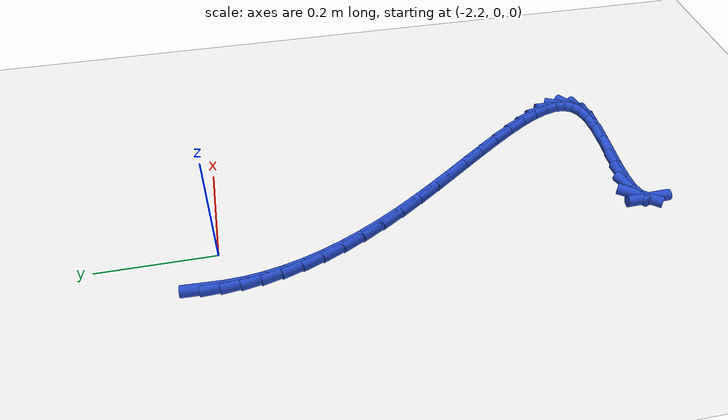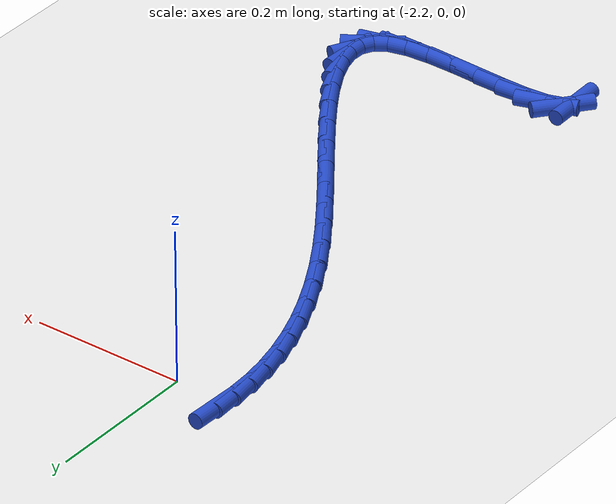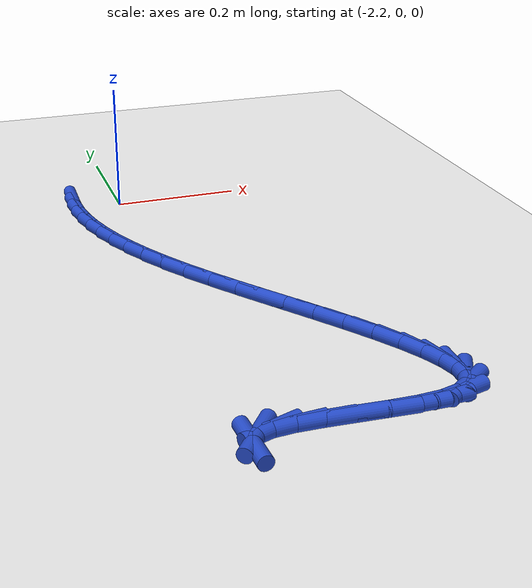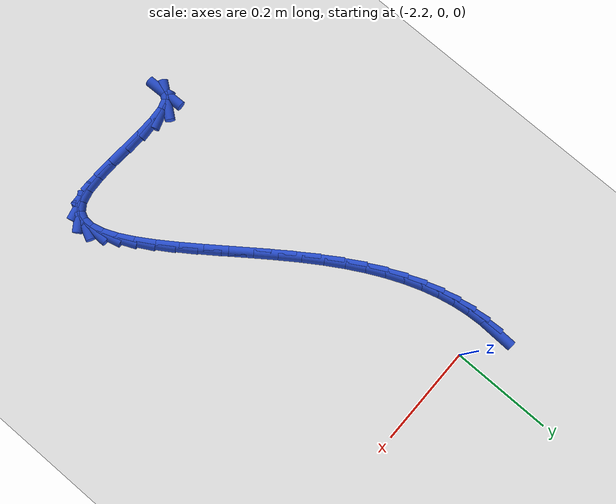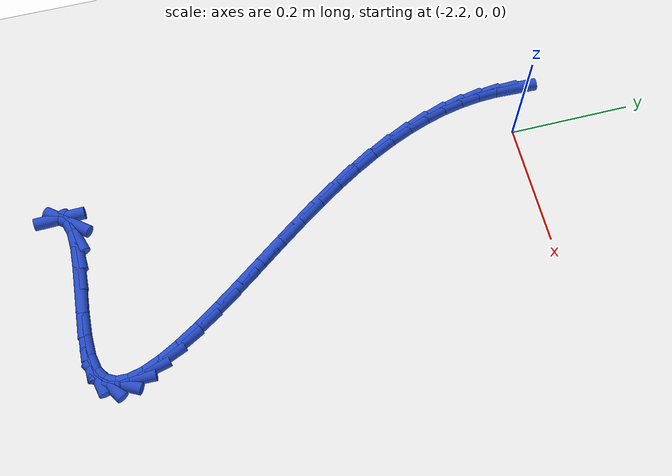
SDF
<sdf version="1.6">
 <world name="default">
  <model name="ground_plane">
   <static>1</static>
   <link name="link">
    <collision name="collision">
     <geometry><plane><normal>0 0 1</normal><size>100 100</size></plane></geometry>
     <surface><friction><ode><mu>100</mu><mu2>50</mu2></ode></friction></surface>
    </collision>
    <visual name="visual">
     <cast_shadows>0</cast_shadows>
     <geometry><plane><normal>0 0 1</normal><size>100 100</size></plane></geometry>
     <material>
      <script><uri>file://media/materials/scripts/gazebo.material</uri><name>Gazebo/WhiteGlow</name></script>
     </material>
    </visual>
   </link>
  </model>
  <model name="line">
   <link name="link_138">
    <pose>-2.275135815111439 0.02231151013541785 0.01 0 1.57 1.5402015009987633</pose>
    <collision name="collision">
     <geometry><cylinder><radius>0.01</radius><length>0.08</length></cylinder></geometry>
    </collision>
    <visual name="visual">
     <material>
      <script><name>Gazebo/Blue</name><uri>file://media/materials/scripts/gazebo.material</uri></script>
     </material>
     <geometry><cylinder><radius>0.01</radius><length>0.08</length></cylinder></geometry>
    </visual>
   </link>
   <link name="link_139">
    <pose>-2.276066311476734 -0.008092520436873741 0.01 0 1.57 -1.518140581456615</pose>
    <collision name="collision">
     <geometry><cylinder><radius>0.01</radius><length>0.08</length></cylinder></geometry>
    </collision>
    <visual name="visual">
     <material>
      <script><name>Gazebo/Blue</name><uri>file://media/materials/scripts/gazebo.material</uri></script>
     </material>
     <geometry><cylinder><radius>0.01</radius><length>0.08</length></cylinder></geometry>
    </visual>
   </link>
   <link name="link_140">
    <pose>-2.2744418058381375 -0.03891544332147269 0.01 0 1.57 -1.4380848000879933</pose>
    <collision name="collision">
     <geometry><cylinder><radius>0.01</radius><length>0.08</length></cylinder></geometry>
    </collision>
    <visual name="visual">
     <material>
      <script><name>Gazebo/Blue</name><uri>file://media/materials/scripts/gazebo.material</uri></script>
     </material>
     <geometry><cylinder><radius>0.01</radius><length>0.08</length></cylinder></geometry>
    </visual>
   </link>
   <link name="link_141">
    <pose>-2.2702632306824055 -0.07021652845055772 0.01 0 1.57 -1.3624320863640065</pose>
    <collision name="collision">
     <geometry><cylinder><radius>0.01</radius><length>0.08</length></cylinder></geometry>
    </collision>
    <visual name="visual">
     <material>
      <script><name>Gazebo/Blue</name><uri>file://media/materials/scripts/gazebo.material</uri></script>
     </material>
     <geometry><cylinder><radius>0.01</radius><length>0.08</length></cylinder></geometry>
    </visual>
   </link>
   <link name="link_142">
    <pose>-2.2635315184962925 -0.10205504575630475 0.01 0 1.57 -1.292020399766577</pose>
    <collision name="collision">
     <geometry><cylinder><radius>0.01</radius><length>0.08</length></cylinder></geometry>
    </collision>
    <visual name="visual">
     <material>
      <script><name>Gazebo/Blue</name><uri>file://media/materials/scripts/gazebo.material</uri></script>
     </material>
     <geometry><cylinder><radius>0.01</radius><length>0.08</length></cylinder></geometry>
    </visual>
   </link>
   <link name="link_143">
    <pose>-2.254247601766551 -0.1344902651708935 0.01 0 1.57 -1.2273193582768211</pose>
    <collision name="collision">
     <geometry><cylinder><radius>0.01</radius><length>0.08</length></cylinder></geometry>
    </collision>
    <visual name="visual">
     <material>
      <script><name>Gazebo/Blue</name><uri>file://media/materials/scripts/gazebo.material</uri></script>
     </material>
     <geometry><cylinder><radius>0.01</radius><length>0.08</length></cylinder></geometry>
    </visual>
   </link>
   <link name="link_144">
    <pose>-2.242412412979938 -0.16758145662649984 0.01 0 1.57 -1.1684799373159598</pose>
    <collision name="collision">
     <geometry><cylinder><radius>0.01</radius><length>0.08</length></cylinder></geometry>
    </collision>
    <visual name="visual">
     <material>
      <script><name>Gazebo/Blue</name><uri>file://media/materials/scripts/gazebo.material</uri></script>
     </material>
     <geometry><cylinder><radius>0.01</radius><length>0.08</length></cylinder></geometry>
    </visual>
   </link>
   <link name="link_145">
    <pose>-2.2280268846232056 -0.20138789005530355 0.01 0 1.57 -1.1154075389264053</pose>
    <collision name="collision">
     <geometry><cylinder><radius>0.01</radius><length>0.08</length></cylinder></geometry>
    </collision>
    <visual name="visual">
     <material>
      <script><name>Gazebo/Blue</name><uri>file://media/materials/scripts/gazebo.material</uri></script>
     </material>
     <geometry><cylinder><radius>0.01</radius><length>0.08</length></cylinder></geometry>
    </visual>
   </link>
   <link name="link_146">
    <pose>-2.2110919491831083 -0.23596883538948032 0.01 0 1.57 -1.0678380058983348</pose>
    <collision name="collision">
     <geometry><cylinder><radius>0.01</radius><length>0.08</length></cylinder></geometry>
    </collision>
    <visual name="visual">
     <material>
      <script><name>Gazebo/Blue</name><uri>file://media/materials/scripts/gazebo.material</uri></script>
     </material>
     <geometry><cylinder><radius>0.01</radius><length>0.08</length></cylinder></geometry>
    </visual>
   </link>
   <link name="link_147">
    <pose>-2.1916085391464013 -0.27138356256121027 0.01 0 1.57 -1.0254040645406362</pose>
    <collision name="collision">
     <geometry><cylinder><radius>0.01</radius><length>0.08</length></cylinder></geometry>
    </collision>
    <visual name="visual">
     <material>
      <script><name>Gazebo/Blue</name><uri>file://media/materials/scripts/gazebo.material</uri></script>
     </material>
     <geometry><cylinder><radius>0.01</radius><length>0.08</length></cylinder></geometry>
    </visual>
   </link>
   <link name="link_148">
    <pose>-2.169577586999839 -0.30769134150266875 0.01 0 1.57 -0.9882271603055426</pose>
    <collision name="collision">
     <geometry><cylinder><radius>0.01</radius><length>0.08</length></cylinder></geometry>
    </collision>
    <visual name="visual">
     <material>
      <script><name>Gazebo/Blue</name><uri>file://media/materials/scripts/gazebo.material</uri></script>
     </material>
     <geometry><cylinder><radius>0.01</radius><length>0.08</length></cylinder></geometry>
    </visual>
   </link>
   <link name="link_149">
    <pose>-2.14504758272592 -0.3449230788981337 0.01 0 1.57 -0.960783940904788</pose>
    <collision name="collision">
     <geometry><cylinder><radius>0.01</radius><length>0.08</length></cylinder></geometry>
    </collision>
    <visual name="visual">
     <material>
      <script><name>Gazebo/Blue</name><uri>file://media/materials/scripts/gazebo.material</uri></script>
     </material>
     <geometry><cylinder><radius>0.01</radius><length>0.08</length></cylinder></geometry>
    </visual>
   </link>
   <link name="link_150">
    <pose>-2.11856521299023 -0.3828125573759364 0.01 0 1.57 -0.9440799862241203</pose>
    <collision name="collision">
     <geometry><cylinder><radius>0.01</radius><length>0.08</length></cylinder></geometry>
    </collision>
    <visual name="visual">
     <material>
      <script><name>Gazebo/Blue</name><uri>file://media/materials/scripts/gazebo.material</uri></script>
     </material>
     <geometry><cylinder><radius>0.01</radius><length>0.08</length></cylinder></geometry>
    </visual>
   </link>
   <link name="link_151">
    <pose>-2.090974397641428 -0.42091628996002745 0.01 0 1.57 -0.9367013923187428</pose>
    <collision name="collision">
     <geometry><cylinder><radius>0.01</radius><length>0.08</length></cylinder></geometry>
    </collision>
    <visual name="visual">
     <material>
      <script><name>Gazebo/Blue</name><uri>file://media/materials/scripts/gazebo.material</uri></script>
     </material>
     <geometry><cylinder><radius>0.01</radius><length>0.08</length></cylinder></geometry>
    </visual>
   </link>
   <link name="link_152">
    <pose>-2.0631230290420284 -0.458788420470648 0.01 0 1.57 -0.9382584353315794</pose>
    <collision name="collision">
     <geometry><cylinder><radius>0.01</radius><length>0.08</length></cylinder></geometry>
    </collision>
    <visual name="visual">
     <material>
      <script><name>Gazebo/Blue</name><uri>file://media/materials/scripts/gazebo.material</uri></script>
     </material>
     <geometry><cylinder><radius>0.01</radius><length>0.08</length></cylinder></geometry>
    </visual>
   </link>
   <link name="link_153">
    <pose>-2.0358589995545495 -0.49598309272803554 0.01 0 1.57 -0.9493813636745205</pose>
    <collision name="collision">
     <geometry><cylinder><radius>0.01</radius><length>0.08</length></cylinder></geometry>
    </collision>
    <visual name="visual">
     <material>
      <script><name>Gazebo/Blue</name><uri>file://media/materials/scripts/gazebo.material</uri></script>
     </material>
     <geometry><cylinder><radius>0.01</radius><length>0.08</length></cylinder></geometry>
    </visual>
   </link>
   <link name="link_154">
    <pose>-2.0100302015415057 -0.5320544505524324 0.01 0 1.57 -0.9719530406101367</pose>
    <collision name="collision">
     <geometry><cylinder><radius>0.01</radius><length>0.08</length></cylinder></geometry>
    </collision>
    <visual name="visual">
     <material>
      <script><name>Gazebo/Blue</name><uri>file://media/materials/scripts/gazebo.material</uri></script>
     </material>
     <geometry><cylinder><radius>0.01</radius><length>0.08</length></cylinder></geometry>
    </visual>
   </link>
   <link name="link_155">
    <pose>-1.9864845273654157 -0.5665566377640764 0.01 0 1.57 -1.0097618411913514</pose>
    <collision name="collision">
     <geometry><cylinder><radius>0.01</radius><length>0.08</length></cylinder></geometry>
    </collision>
    <visual name="visual">
     <material>
      <script><name>Gazebo/Blue</name><uri>file://media/materials/scripts/gazebo.material</uri></script>
     </material>
     <geometry><cylinder><radius>0.01</radius><length>0.08</length></cylinder></geometry>
    </visual>
   </link>
   <link name="link_156">
    <pose>-1.9660698693887941 -0.5990437981832096 0.01 0 1.57 -1.0699677371820615</pose>
    <collision name="collision">
     <geometry><cylinder><radius>0.01</radius><length>0.08</length></cylinder></geometry>
    </collision>
    <visual name="visual">
     <material>
      <script><name>Gazebo/Blue</name><uri>file://media/materials/scripts/gazebo.material</uri></script>
     </material>
     <geometry><cylinder><radius>0.01</radius><length>0.08</length></cylinder></geometry>
    </visual>
   </link>
   <link name="link_157">
    <pose>-1.9496341199741583 -0.6290700756300701 0.01 0 1.57 -1.166331736735303</pose>
    <collision name="collision">
     <geometry><cylinder><radius>0.01</radius><length>0.08</length></cylinder></geometry>
    </collision>
    <visual name="visual">
     <material>
      <script><name>Gazebo/Blue</name><uri>file://media/materials/scripts/gazebo.material</uri></script>
     </material>
     <geometry><cylinder><radius>0.01</radius><length>0.08</length></cylinder></geometry>
    </visual>
   </link>
   <link name="link_158">
    <pose>-1.9380251714840235 -0.6561896139248995 0.01 0 1.57 -1.3261139166301987</pose>
    <collision name="collision">
     <geometry><cylinder><radius>0.01</radius><length>0.08</length></cylinder></geometry>
    </collision>
    <visual name="visual">
     <material>
      <script><name>Gazebo/Blue</name><uri>file://media/materials/scripts/gazebo.material</uri></script>
     </material>
     <geometry><cylinder><radius>0.01</radius><length>0.08</length></cylinder></geometry>
    </visual>
   </link>
   <link name="link_159">
    <pose>-1.9320909162809081 -0.6799565568879364 0.01 0 1.57 1.541341908560781</pose>
    <collision name="collision">
     <geometry><cylinder><radius>0.01</radius><length>0.08</length></cylinder></geometry>
    </collision>
    <visual name="visual">
     <material>
      <script><name>Gazebo/Blue</name><uri>file://media/materials/scripts/gazebo.material</uri></script>
     </material>
     <geometry><cylinder><radius>0.01</radius><length>0.08</length></cylinder></geometry>
    </visual>
   </link>
   <link name="link_160">
    <pose>-1.9326792467273264 -0.6999250483394216 0.01 0 1.57 1.1022401802384845</pose>
    <collision name="collision">
     <geometry><cylinder><radius>0.01</radius><length>0.08</length></cylinder></geometry>
    </collision>
    <visual name="visual">
     <material>
      <script><name>Gazebo/Blue</name><uri>file://media/materials/scripts/gazebo.material</uri></script>
     </material>
     <geometry><cylinder><radius>0.01</radius><length>0.08</length></cylinder></geometry>
    </visual>
   </link>
   <link name="link_161">
    <pose>-1.9406380551857954 -0.7156492320995952 0.01 0 1.57 0.5985929510750342</pose>
    <collision name="collision">
     <geometry><cylinder><radius>0.01</radius><length>0.08</length></cylinder></geometry>
    </collision>
    <visual name="visual">
     <material>
      <script><name>Gazebo/Blue</name><uri>file://media/materials/scripts/gazebo.material</uri></script>
     </material>
     <geometry><cylinder><radius>0.01</radius><length>0.08</length></cylinder></geometry>
    </visual>
   </link>
   <link name="link_162">
    <pose>-1.9568152340188312 -0.7266832519886963 0.01 0 1.57 0.23614986247589081</pose>
    <collision name="collision">
     <geometry><cylinder><radius>0.01</radius><length>0.08</length></cylinder></geometry>
    </collision>
    <visual name="visual">
     <material>
      <script><name>Gazebo/Blue</name><uri>file://media/materials/scripts/gazebo.material</uri></script>
     </material>
     <geometry><cylinder><radius>0.01</radius><length>0.08</length></cylinder></geometry>
    </visual>
   </link>
   <link name="link_163">
    <pose>-1.9818273133589965 -0.7327021541565215 0.01 0 1.57 0.055792074686062065</pose>
    <collision name="collision">
     <geometry><cylinder><radius>0.01</radius><length>0.08</length></cylinder></geometry>
    </collision>
    <visual name="visual">
     <material>
      <script><name>Gazebo/Blue</name><uri>file://media/materials/scripts/gazebo.material</uri></script>
     </material>
     <geometry><cylinder><radius>0.01</radius><length>0.08</length></cylinder></geometry>
    </visual>
   </link>
   <link name="link_164">
    <pose>-2.0141367424462193 -0.7345066369304888 0.01 0 1.57 -0.027014415904022565</pose>
    <collision name="collision">
     <geometry><cylinder><radius>0.01</radius><length>0.08</length></cylinder></geometry>
    </collision>
    <visual name="visual">
     <material>
      <script><name>Gazebo/Blue</name><uri>file://media/materials/scripts/gazebo.material</uri></script>
     </material>
     <geometry><cylinder><radius>0.01</radius><length>0.08</length></cylinder></geometry>
    </visual>
   </link>
   <link name="link_165">
    <pose>-2.0510343946134744 -0.7335096258646914 0.01 0 1.57 -0.061304684335252255</pose>
    <collision name="collision">
     <geometry><cylinder><radius>0.01</radius><length>0.08</length></cylinder></geometry>
    </collision>
    <visual name="visual">
     <material>
      <script><name>Gazebo/Blue</name><uri>file://media/materials/scripts/gazebo.material</uri></script>
     </material>
     <geometry><cylinder><radius>0.01</radius><length>0.08</length></cylinder></geometry>
    </visual>
   </link>
   <link name="link_166">
    <pose>-2.089799433175963 -0.7311301657852708 0.01 0 1.57 -0.061719614459383</pose>
    <collision name="collision">
     <geometry><cylinder><radius>0.01</radius><length>0.08</length></cylinder></geometry>
    </collision>
    <visual name="visual">
     <material>
      <script><name>Gazebo/Blue</name><uri>file://media/materials/scripts/gazebo.material</uri></script>
     </material>
     <geometry><cylinder><radius>0.01</radius><length>0.08</length></cylinder></geometry>
    </visual>
   </link>
   <link name="link_167">
    <pose>-2.1277110214488903 -0.7287873015183689 0.01 0 1.57 -0.02583273084775369</pose>
    <collision name="collision">
     <geometry><cylinder><radius>0.01</radius><length>0.08</length></cylinder></geometry>
    </collision>
    <visual name="visual">
     <material>
      <script><name>Gazebo/Blue</name><uri>file://media/materials/scripts/gazebo.material</uri></script>
     </material>
     <geometry><cylinder><radius>0.01</radius><length>0.08</length></cylinder></geometry>
    </visual>
   </link>
   <link name="link_168">
    <pose>-2.162048322747459 -0.7279000778901278 0.01 0 1.57 0.07075570585873298</pose>
    <collision name="collision">
     <geometry><cylinder><radius>0.01</radius><length>0.08</length></cylinder></geometry>
    </collision>
    <visual name="visual">
     <material>
      <script><name>Gazebo/Blue</name><uri>file://media/materials/scripts/gazebo.material</uri></script>
     </material>
     <geometry><cylinder><radius>0.01</radius><length>0.08</length></cylinder></geometry>
    </visual>
   </link>
   <link name="link_169">
    <pose>-2.190090500386874 -0.7298875397266888 0.01 0 1.57 0.3178142951443558</pose>
    <collision name="collision">
     <geometry><cylinder><radius>0.01</radius><length>0.08</length></cylinder></geometry>
    </collision>
    <visual name="visual">
     <material>
      <script><name>Gazebo/Blue</name><uri>file://media/materials/scripts/gazebo.material</uri></script>
     </material>
     <geometry><cylinder><radius>0.01</radius><length>0.08</length></cylinder></geometry>
    </visual>
   </link>
   <link name="link_170">
    <pose>-2.2091431710911045 -0.7361552095558305 0.01 0 1.57 0.9037157678130943</pose>
    <collision name="collision">
     <geometry><cylinder><radius>0.01</radius><length>0.08</length></cylinder></geometry>
    </collision>
    <visual name="visual">
     <material>
      <script><name>Gazebo/Blue</name><uri>file://media/materials/scripts/gazebo.material</uri></script>
     </material>
     <geometry><cylinder><radius>0.01</radius><length>0.08</length></cylinder></geometry>
    </visual>
   </link>
   <link name="link_171">
    <pose>-2.2179697757800545 -0.7473634078819168 0.01 0 1.57 -1.5422642290172492</pose>
    <collision name="collision">
     <geometry><cylinder><radius>0.01</radius><length>0.08</length></cylinder></geometry>
    </collision>
    <visual name="visual">
     <material>
      <script><name>Gazebo/Blue</name><uri>file://media/materials/scripts/gazebo.material</uri></script>
     </material>
     <geometry><cylinder><radius>0.01</radius><length>0.08</length></cylinder></geometry>
    </visual>
   </link>
  </model>
 </world>
</sdf>
